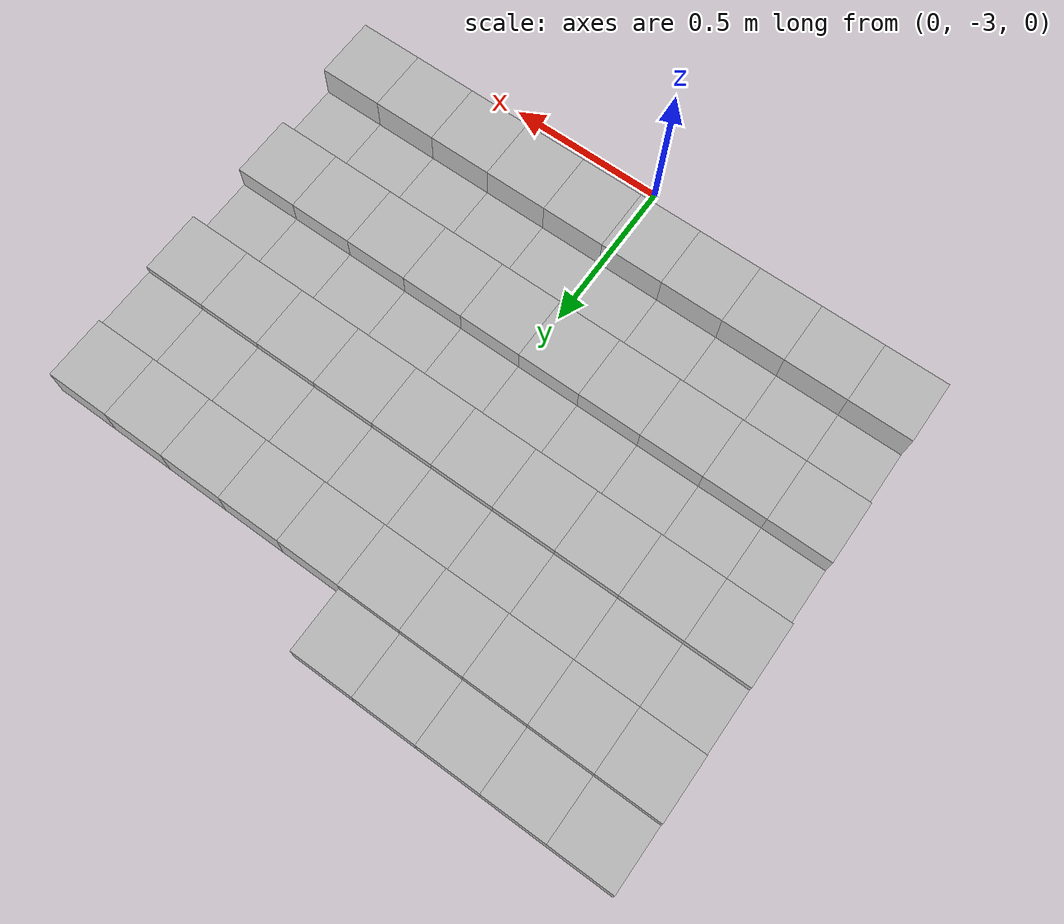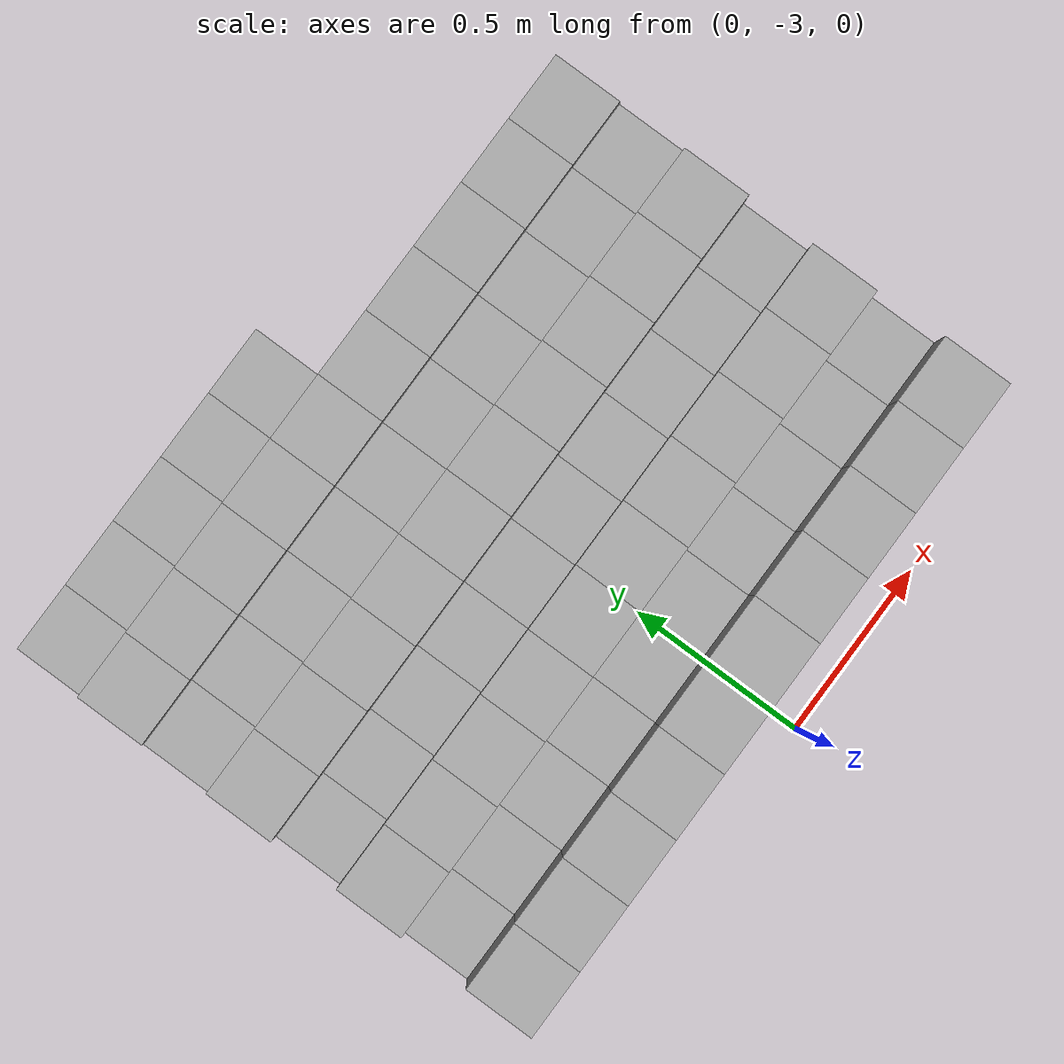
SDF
<sdf version="1.6">
 <model name="Terrain">
  <static>true</static>
  <link name="box_7_0">
   <pose>-0.9 -1.4 0.0395804026666 0 0 0</pose>
   <inertial>
    <mass>1.0</mass>
    <inertia><ixx>0.0</ixx><ixy>0.0</ixy><ixz>0.0</ixz><iyy>0.0</iyy><iyz>0.0</iyz><izz>0.0</izz></inertia>
   </inertial>
   <collision name="collision"><geometry><box><size>0.2 0.2 0.0791608053333</size></box></geometry></collision>
   <visual name="visual"><geometry><box><size>0.2 0.2 0.0791608053333</size></box></geometry></visual>
  </link>
  <link name="box_7_1">
   <pose>-0.7 -1.4 0.0395804026666 0 0 0</pose>
   <inertial>
    <mass>1.0</mass>
    <inertia><ixx>0.0</ixx><ixy>0.0</ixy><ixz>0.0</ixz><iyy>0.0</iyy><iyz>0.0</iyz><izz>0.0</izz></inertia>
   </inertial>
   <collision name="collision"><geometry><box><size>0.2 0.2 0.0791608053333</size></box></geometry></collision>
   <visual name="visual"><geometry><box><size>0.2 0.2 0.0791608053333</size></box></geometry></visual>
  </link>
  <link name="box_7_2">
   <pose>-0.5 -1.4 0.0395804026666 0 0 0</pose>
   <inertial>
    <mass>1.0</mass>
    <inertia><ixx>0.0</ixx><ixy>0.0</ixy><ixz>0.0</ixz><iyy>0.0</iyy><iyz>0.0</iyz><izz>0.0</izz></inertia>
   </inertial>
   <collision name="collision"><geometry><box><size>0.2 0.2 0.0791608053333</size></box></geometry></collision>
   <visual name="visual"><geometry><box><size>0.2 0.2 0.0791608053333</size></box></geometry></visual>
  </link>
  <link name="box_7_3">
   <pose>-0.3 -1.4 0.0395804026666 0 0 0</pose>
   <inertial>
    <mass>1.0</mass>
    <inertia><ixx>0.0</ixx><ixy>0.0</ixy><ixz>0.0</ixz><iyy>0.0</iyy><iyz>0.0</iyz><izz>0.0</izz></inertia>
   </inertial>
   <collision name="collision"><geometry><box><size>0.2 0.2 0.0791608053333</size></box></geometry></collision>
   <visual name="visual"><geometry><box><size>0.2 0.2 0.0791608053333</size></box></geometry></visual>
  </link>
  <link name="box_7_4">
   <pose>-0.1 -1.4 0.0395804026666 0 0 0</pose>
   <inertial>
    <mass>1.0</mass>
    <inertia><ixx>0.0</ixx><ixy>0.0</ixy><ixz>0.0</ixz><iyy>0.0</iyy><iyz>0.0</iyz><izz>0.0</izz></inertia>
   </inertial>
   <collision name="collision"><geometry><box><size>0.2 0.2 0.0791608053333</size></box></geometry></collision>
   <visual name="visual"><geometry><box><size>0.2 0.2 0.0791608053333</size></box></geometry></visual>
  </link>
  <link name="box_8_0">
   <pose>-0.9 -1.6 0.0584761401967 0 0 0</pose>
   <inertial>
    <mass>1.0</mass>
    <inertia><ixx>0.0</ixx><ixy>0.0</ixy><ixz>0.0</ixz><iyy>0.0</iyy><iyz>0.0</iyz><izz>0.0</izz></inertia>
   </inertial>
   <collision name="collision"><geometry><box><size>0.2 0.2 0.116952280393</size></box></geometry></collision>
   <visual name="visual"><geometry><box><size>0.2 0.2 0.116952280393</size></box></geometry></visual>
  </link>
  <link name="box_8_1">
   <pose>-0.7 -1.6 0.0584761401967 0 0 0</pose>
   <inertial>
    <mass>1.0</mass>
    <inertia><ixx>0.0</ixx><ixy>0.0</ixy><ixz>0.0</ixz><iyy>0.0</iyy><iyz>0.0</iyz><izz>0.0</izz></inertia>
   </inertial>
   <collision name="collision"><geometry><box><size>0.2 0.2 0.116952280393</size></box></geometry></collision>
   <visual name="visual"><geometry><box><size>0.2 0.2 0.116952280393</size></box></geometry></visual>
  </link>
  <link name="box_8_2">
   <pose>-0.5 -1.6 0.0584761401967 0 0 0</pose>
   <inertial>
    <mass>1.0</mass>
    <inertia><ixx>0.0</ixx><ixy>0.0</ixy><ixz>0.0</ixz><iyy>0.0</iyy><iyz>0.0</iyz><izz>0.0</izz></inertia>
   </inertial>
   <collision name="collision"><geometry><box><size>0.2 0.2 0.116952280393</size></box></geometry></collision>
   <visual name="visual"><geometry><box><size>0.2 0.2 0.116952280393</size></box></geometry></visual>
  </link>
  <link name="box_8_3">
   <pose>-0.3 -1.6 0.0584761401967 0 0 0</pose>
   <inertial>
    <mass>1.0</mass>
    <inertia><ixx>0.0</ixx><ixy>0.0</ixy><ixz>0.0</ixz><iyy>0.0</iyy><iyz>0.0</iyz><izz>0.0</izz></inertia>
   </inertial>
   <collision name="collision"><geometry><box><size>0.2 0.2 0.116952280393</size></box></geometry></collision>
   <visual name="visual"><geometry><box><size>0.2 0.2 0.116952280393</size></box></geometry></visual>
  </link>
  <link name="box_8_4">
   <pose>-0.1 -1.6 0.0584761401967 0 0 0</pose>
   <inertial>
    <mass>1.0</mass>
    <inertia><ixx>0.0</ixx><ixy>0.0</ixy><ixz>0.0</ixz><iyy>0.0</iyy><iyz>0.0</iyz><izz>0.0</izz></inertia>
   </inertial>
   <collision name="collision"><geometry><box><size>0.2 0.2 0.116952280393</size></box></geometry></collision>
   <visual name="visual"><geometry><box><size>0.2 0.2 0.116952280393</size></box></geometry></visual>
  </link>
  <link name="box_8_5">
   <pose>0.1 -1.6 0.0584761401967 0 0 0</pose>
   <inertial>
    <mass>1.0</mass>
    <inertia><ixx>0.0</ixx><ixy>0.0</ixy><ixz>0.0</ixz><iyy>0.0</iyy><iyz>0.0</iyz><izz>0.0</izz></inertia>
   </inertial>
   <collision name="collision"><geometry><box><size>0.2 0.2 0.116952280393</size></box></geometry></collision>
   <visual name="visual"><geometry><box><size>0.2 0.2 0.116952280393</size></box></geometry></visual>
  </link>
  <link name="box_8_6">
   <pose>0.3 -1.6 0.0584761401967 0 0 0</pose>
   <inertial>
    <mass>1.0</mass>
    <inertia><ixx>0.0</ixx><ixy>0.0</ixy><ixz>0.0</ixz><iyy>0.0</iyy><iyz>0.0</iyz><izz>0.0</izz></inertia>
   </inertial>
   <collision name="collision"><geometry><box><size>0.2 0.2 0.116952280393</size></box></geometry></collision>
   <visual name="visual"><geometry><box><size>0.2 0.2 0.116952280393</size></box></geometry></visual>
  </link>
  <link name="box_8_7">
   <pose>0.5 -1.6 0.0584761401967 0 0 0</pose>
   <inertial>
    <mass>1.0</mass>
    <inertia><ixx>0.0</ixx><ixy>0.0</ixy><ixz>0.0</ixz><iyy>0.0</iyy><iyz>0.0</iyz><izz>0.0</izz></inertia>
   </inertial>
   <collision name="collision"><geometry><box><size>0.2 0.2 0.116952280393</size></box></geometry></collision>
   <visual name="visual"><geometry><box><size>0.2 0.2 0.116952280393</size></box></geometry></visual>
  </link>
  <link name="box_8_8">
   <pose>0.7 -1.6 0.0584761401967 0 0 0</pose>
   <inertial>
    <mass>1.0</mass>
    <inertia><ixx>0.0</ixx><ixy>0.0</ixy><ixz>0.0</ixz><iyy>0.0</iyy><iyz>0.0</iyz><izz>0.0</izz></inertia>
   </inertial>
   <collision name="collision"><geometry><box><size>0.2 0.2 0.116952280393</size></box></geometry></collision>
   <visual name="visual"><geometry><box><size>0.2 0.2 0.116952280393</size></box></geometry></visual>
  </link>
  <link name="box_8_9">
   <pose>0.9 -1.6 0.0584761401967 0 0 0</pose>
   <inertial>
    <mass>1.0</mass>
    <inertia><ixx>0.0</ixx><ixy>0.0</ixy><ixz>0.0</ixz><iyy>0.0</iyy><iyz>0.0</iyz><izz>0.0</izz></inertia>
   </inertial>
   <collision name="collision"><geometry><box><size>0.2 0.2 0.116952280393</size></box></geometry></collision>
   <visual name="visual"><geometry><box><size>0.2 0.2 0.116952280393</size></box></geometry></visual>
  </link>
  <link name="box_9_0">
   <pose>-0.9 -1.8 0.0466013704256 0 0 0</pose>
   <inertial>
    <mass>1.0</mass>
    <inertia><ixx>0.0</ixx><ixy>0.0</ixy><ixz>0.0</ixz><iyy>0.0</iyy><iyz>0.0</iyz><izz>0.0</izz></inertia>
   </inertial>
   <collision name="collision"><geometry><box><size>0.2 0.2 0.0932027408513</size></box></geometry></collision>
   <visual name="visual"><geometry><box><size>0.2 0.2 0.0932027408513</size></box></geometry></visual>
  </link>
  <link name="box_9_1">
   <pose>-0.7 -1.8 0.0466013704256 0 0 0</pose>
   <inertial>
    <mass>1.0</mass>
    <inertia><ixx>0.0</ixx><ixy>0.0</ixy><ixz>0.0</ixz><iyy>0.0</iyy><iyz>0.0</iyz><izz>0.0</izz></inertia>
   </inertial>
   <collision name="collision"><geometry><box><size>0.2 0.2 0.0932027408513</size></box></geometry></collision>
   <visual name="visual"><geometry><box><size>0.2 0.2 0.0932027408513</size></box></geometry></visual>
  </link>
  <link name="box_9_2">
   <pose>-0.5 -1.8 0.0466013704256 0 0 0</pose>
   <inertial>
    <mass>1.0</mass>
    <inertia><ixx>0.0</ixx><ixy>0.0</ixy><ixz>0.0</ixz><iyy>0.0</iyy><iyz>0.0</iyz><izz>0.0</izz></inertia>
   </inertial>
   <collision name="collision"><geometry><box><size>0.2 0.2 0.0932027408513</size></box></geometry></collision>
   <visual name="visual"><geometry><box><size>0.2 0.2 0.0932027408513</size></box></geometry></visual>
  </link>
  <link name="box_9_3">
   <pose>-0.3 -1.8 0.0466013704256 0 0 0</pose>
   <inertial>
    <mass>1.0</mass>
    <inertia><ixx>0.0</ixx><ixy>0.0</ixy><ixz>0.0</ixz><iyy>0.0</iyy><iyz>0.0</iyz><izz>0.0</izz></inertia>
   </inertial>
   <collision name="collision"><geometry><box><size>0.2 0.2 0.0932027408513</size></box></geometry></collision>
   <visual name="visual"><geometry><box><size>0.2 0.2 0.0932027408513</size></box></geometry></visual>
  </link>
  <link name="box_9_4">
   <pose>-0.1 -1.8 0.0466013704256 0 0 0</pose>
   <inertial>
    <mass>1.0</mass>
    <inertia><ixx>0.0</ixx><ixy>0.0</ixy><ixz>0.0</ixz><iyy>0.0</iyy><iyz>0.0</iyz><izz>0.0</izz></inertia>
   </inertial>
   <collision name="collision"><geometry><box><size>0.2 0.2 0.0932027408513</size></box></geometry></collision>
   <visual name="visual"><geometry><box><size>0.2 0.2 0.0932027408513</size></box></geometry></visual>
  </link>
  <link name="box_9_5">
   <pose>0.1 -1.8 0.0466013704256 0 0 0</pose>
   <inertial>
    <mass>1.0</mass>
    <inertia><ixx>0.0</ixx><ixy>0.0</ixy><ixz>0.0</ixz><iyy>0.0</iyy><iyz>0.0</iyz><izz>0.0</izz></inertia>
   </inertial>
   <collision name="collision"><geometry><box><size>0.2 0.2 0.0932027408513</size></box></geometry></collision>
   <visual name="visual"><geometry><box><size>0.2 0.2 0.0932027408513</size></box></geometry></visual>
  </link>
  <link name="box_9_6">
   <pose>0.3 -1.8 0.0466013704256 0 0 0</pose>
   <inertial>
    <mass>1.0</mass>
    <inertia><ixx>0.0</ixx><ixy>0.0</ixy><ixz>0.0</ixz><iyy>0.0</iyy><iyz>0.0</iyz><izz>0.0</izz></inertia>
   </inertial>
   <collision name="collision"><geometry><box><size>0.2 0.2 0.0932027408513</size></box></geometry></collision>
   <visual name="visual"><geometry><box><size>0.2 0.2 0.0932027408513</size></box></geometry></visual>
  </link>
  <link name="box_9_7">
   <pose>0.5 -1.8 0.0466013704256 0 0 0</pose>
   <inertial>
    <mass>1.0</mass>
    <inertia><ixx>0.0</ixx><ixy>0.0</ixy><ixz>0.0</ixz><iyy>0.0</iyy><iyz>0.0</iyz><izz>0.0</izz></inertia>
   </inertial>
   <collision name="collision"><geometry><box><size>0.2 0.2 0.0932027408513</size></box></geometry></collision>
   <visual name="visual"><geometry><box><size>0.2 0.2 0.0932027408513</size></box></geometry></visual>
  </link>
  <link name="box_9_8">
   <pose>0.7 -1.8 0.0466013704256 0 0 0</pose>
   <inertial>
    <mass>1.0</mass>
    <inertia><ixx>0.0</ixx><ixy>0.0</ixy><ixz>0.0</ixz><iyy>0.0</iyy><iyz>0.0</iyz><izz>0.0</izz></inertia>
   </inertial>
   <collision name="collision"><geometry><box><size>0.2 0.2 0.0932027408513</size></box></geometry></collision>
   <visual name="visual"><geometry><box><size>0.2 0.2 0.0932027408513</size></box></geometry></visual>
  </link>
  <link name="box_9_9">
   <pose>0.9 -1.8 0.0466013704256 0 0 0</pose>
   <inertial>
    <mass>1.0</mass>
    <inertia><ixx>0.0</ixx><ixy>0.0</ixy><ixz>0.0</ixz><iyy>0.0</iyy><iyz>0.0</iyz><izz>0.0</izz></inertia>
   </inertial>
   <collision name="collision"><geometry><box><size>0.2 0.2 0.0932027408513</size></box></geometry></collision>
   <visual name="visual"><geometry><box><size>0.2 0.2 0.0932027408513</size></box></geometry></visual>
  </link>
  <link name="box_10_0">
   <pose>-0.9 -2.0 0.0619657868485 0 0 0</pose>
   <inertial>
    <mass>1.0</mass>
    <inertia><ixx>0.0</ixx><ixy>0.0</ixy><ixz>0.0</ixz><iyy>0.0</iyy><iyz>0.0</iyz><izz>0.0</izz></inertia>
   </inertial>
   <collision name="collision"><geometry><box><size>0.2 0.2 0.123931573697</size></box></geometry></collision>
   <visual name="visual"><geometry><box><size>0.2 0.2 0.123931573697</size></box></geometry></visual>
  </link>
  <link name="box_10_1">
   <pose>-0.7 -2.0 0.0619657868485 0 0 0</pose>
   <inertial>
    <mass>1.0</mass>
    <inertia><ixx>0.0</ixx><ixy>0.0</ixy><ixz>0.0</ixz><iyy>0.0</iyy><iyz>0.0</iyz><izz>0.0</izz></inertia>
   </inertial>
   <collision name="collision"><geometry><box><size>0.2 0.2 0.123931573697</size></box></geometry></collision>
   <visual name="visual"><geometry><box><size>0.2 0.2 0.123931573697</size></box></geometry></visual>
  </link>
  <link name="box_10_2">
   <pose>-0.5 -2.0 0.0619657868485 0 0 0</pose>
   <inertial>
    <mass>1.0</mass>
    <inertia><ixx>0.0</ixx><ixy>0.0</ixy><ixz>0.0</ixz><iyy>0.0</iyy><iyz>0.0</iyz><izz>0.0</izz></inertia>
   </inertial>
   <collision name="collision"><geometry><box><size>0.2 0.2 0.123931573697</size></box></geometry></collision>
   <visual name="visual"><geometry><box><size>0.2 0.2 0.123931573697</size></box></geometry></visual>
  </link>
  <link name="box_10_3">
   <pose>-0.3 -2.0 0.0619657868485 0 0 0</pose>
   <inertial>
    <mass>1.0</mass>
    <inertia><ixx>0.0</ixx><ixy>0.0</ixy><ixz>0.0</ixz><iyy>0.0</iyy><iyz>0.0</iyz><izz>0.0</izz></inertia>
   </inertial>
   <collision name="collision"><geometry><box><size>0.2 0.2 0.123931573697</size></box></geometry></collision>
   <visual name="visual"><geometry><box><size>0.2 0.2 0.123931573697</size></box></geometry></visual>
  </link>
  <link name="box_10_4">
   <pose>-0.1 -2.0 0.0619657868485 0 0 0</pose>
   <inertial>
    <mass>1.0</mass>
    <inertia><ixx>0.0</ixx><ixy>0.0</ixy><ixz>0.0</ixz><iyy>0.0</iyy><iyz>0.0</iyz><izz>0.0</izz></inertia>
   </inertial>
   <collision name="collision"><geometry><box><size>0.2 0.2 0.123931573697</size></box></geometry></collision>
   <visual name="visual"><geometry><box><size>0.2 0.2 0.123931573697</size></box></geometry></visual>
  </link>
  <link name="box_10_5">
   <pose>0.1 -2.0 0.0619657868485 0 0 0</pose>
   <inertial>
    <mass>1.0</mass>
    <inertia><ixx>0.0</ixx><ixy>0.0</ixy><ixz>0.0</ixz><iyy>0.0</iyy><iyz>0.0</iyz><izz>0.0</izz></inertia>
   </inertial>
   <collision name="collision"><geometry><box><size>0.2 0.2 0.123931573697</size></box></geometry></collision>
   <visual name="visual"><geometry><box><size>0.2 0.2 0.123931573697</size></box></geometry></visual>
  </link>
  <link name="box_10_6">
   <pose>0.3 -2.0 0.0619657868485 0 0 0</pose>
   <inertial>
    <mass>1.0</mass>
    <inertia><ixx>0.0</ixx><ixy>0.0</ixy><ixz>0.0</ixz><iyy>0.0</iyy><iyz>0.0</iyz><izz>0.0</izz></inertia>
   </inertial>
   <collision name="collision"><geometry><box><size>0.2 0.2 0.123931573697</size></box></geometry></collision>
   <visual name="visual"><geometry><box><size>0.2 0.2 0.123931573697</size></box></geometry></visual>
  </link>
  <link name="box_10_7">
   <pose>0.5 -2.0 0.0619657868485 0 0 0</pose>
   <inertial>
    <mass>1.0</mass>
    <inertia><ixx>0.0</ixx><ixy>0.0</ixy><ixz>0.0</ixz><iyy>0.0</iyy><iyz>0.0</iyz><izz>0.0</izz></inertia>
   </inertial>
   <collision name="collision"><geometry><box><size>0.2 0.2 0.123931573697</size></box></geometry></collision>
   <visual name="visual"><geometry><box><size>0.2 0.2 0.123931573697</size></box></geometry></visual>
  </link>
  <link name="box_10_8">
   <pose>0.7 -2.0 0.0619657868485 0 0 0</pose>
   <inertial>
    <mass>1.0</mass>
    <inertia><ixx>0.0</ixx><ixy>0.0</ixy><ixz>0.0</ixz><iyy>0.0</iyy><iyz>0.0</iyz><izz>0.0</izz></inertia>
   </inertial>
   <collision name="collision"><geometry><box><size>0.2 0.2 0.123931573697</size></box></geometry></collision>
   <visual name="visual"><geometry><box><size>0.2 0.2 0.123931573697</size></box></geometry></visual>
  </link>
  <link name="box_10_9">
   <pose>0.9 -2.0 0.0619657868485 0 0 0</pose>
   <inertial>
    <mass>1.0</mass>
    <inertia><ixx>0.0</ixx><ixy>0.0</ixy><ixz>0.0</ixz><iyy>0.0</iyy><iyz>0.0</iyz><izz>0.0</izz></inertia>
   </inertial>
   <collision name="collision"><geometry><box><size>0.2 0.2 0.123931573697</size></box></geometry></collision>
   <visual name="visual"><geometry><box><size>0.2 0.2 0.123931573697</size></box></geometry></visual>
  </link>
  <link name="box_11_0">
   <pose>-0.9 -2.2 0.0144472041441 0 0 0</pose>
   <inertial>
    <mass>1.0</mass>
    <inertia><ixx>0.0</ixx><ixy>0.0</ixy><ixz>0.0</ixz><iyy>0.0</iyy><iyz>0.0</iyz><izz>0.0</izz></inertia>
   </inertial>
   <collision name="collision"><geometry><box><size>0.2 0.2 0.0288944082882</size></box></geometry></collision>
   <visual name="visual"><geometry><box><size>0.2 0.2 0.0288944082882</size></box></geometry></visual>
  </link>
  <link name="box_11_1">
   <pose>-0.7 -2.2 0.0144472041441 0 0 0</pose>
   <inertial>
    <mass>1.0</mass>
    <inertia><ixx>0.0</ixx><ixy>0.0</ixy><ixz>0.0</ixz><iyy>0.0</iyy><iyz>0.0</iyz><izz>0.0</izz></inertia>
   </inertial>
   <collision name="collision"><geometry><box><size>0.2 0.2 0.0288944082882</size></box></geometry></collision>
   <visual name="visual"><geometry><box><size>0.2 0.2 0.0288944082882</size></box></geometry></visual>
  </link>
  <link name="box_11_2">
   <pose>-0.5 -2.2 0.0144472041441 0 0 0</pose>
   <inertial>
    <mass>1.0</mass>
    <inertia><ixx>0.0</ixx><ixy>0.0</ixy><ixz>0.0</ixz><iyy>0.0</iyy><iyz>0.0</iyz><izz>0.0</izz></inertia>
   </inertial>
   <collision name="collision"><geometry><box><size>0.2 0.2 0.0288944082882</size></box></geometry></collision>
   <visual name="visual"><geometry><box><size>0.2 0.2 0.0288944082882</size></box></geometry></visual>
  </link>
  <link name="box_11_3">
   <pose>-0.3 -2.2 0.0144472041441 0 0 0</pose>
   <inertial>
    <mass>1.0</mass>
    <inertia><ixx>0.0</ixx><ixy>0.0</ixy><ixz>0.0</ixz><iyy>0.0</iyy><iyz>0.0</iyz><izz>0.0</izz></inertia>
   </inertial>
   <collision name="collision"><geometry><box><size>0.2 0.2 0.0288944082882</size></box></geometry></collision>
   <visual name="visual"><geometry><box><size>0.2 0.2 0.0288944082882</size></box></geometry></visual>
  </link>
  <link name="box_11_4">
   <pose>-0.1 -2.2 0.0144472041441 0 0 0</pose>
   <inertial>
    <mass>1.0</mass>
    <inertia><ixx>0.0</ixx><ixy>0.0</ixy><ixz>0.0</ixz><iyy>0.0</iyy><iyz>0.0</iyz><izz>0.0</izz></inertia>
   </inertial>
   <collision name="collision"><geometry><box><size>0.2 0.2 0.0288944082882</size></box></geometry></collision>
   <visual name="visual"><geometry><box><size>0.2 0.2 0.0288944082882</size></box></geometry></visual>
  </link>
  <link name="box_11_5">
   <pose>0.1 -2.2 0.0144472041441 0 0 0</pose>
   <inertial>
    <mass>1.0</mass>
    <inertia><ixx>0.0</ixx><ixy>0.0</ixy><ixz>0.0</ixz><iyy>0.0</iyy><iyz>0.0</iyz><izz>0.0</izz></inertia>
   </inertial>
   <collision name="collision"><geometry><box><size>0.2 0.2 0.0288944082882</size></box></geometry></collision>
   <visual name="visual"><geometry><box><size>0.2 0.2 0.0288944082882</size></box></geometry></visual>
  </link>
  <link name="box_11_6">
   <pose>0.3 -2.2 0.0144472041441 0 0 0</pose>
   <inertial>
    <mass>1.0</mass>
    <inertia><ixx>0.0</ixx><ixy>0.0</ixy><ixz>0.0</ixz><iyy>0.0</iyy><iyz>0.0</iyz><izz>0.0</izz></inertia>
   </inertial>
   <collision name="collision"><geometry><box><size>0.2 0.2 0.0288944082882</size></box></geometry></collision>
   <visual name="visual"><geometry><box><size>0.2 0.2 0.0288944082882</size></box></geometry></visual>
  </link>
  <link name="box_11_7">
   <pose>0.5 -2.2 0.0144472041441 0 0 0</pose>
   <inertial>
    <mass>1.0</mass>
    <inertia><ixx>0.0</ixx><ixy>0.0</ixy><ixz>0.0</ixz><iyy>0.0</iyy><iyz>0.0</iyz><izz>0.0</izz></inertia>
   </inertial>
   <collision name="collision"><geometry><box><size>0.2 0.2 0.0288944082882</size></box></geometry></collision>
   <visual name="visual"><geometry><box><size>0.2 0.2 0.0288944082882</size></box></geometry></visual>
  </link>
  <link name="box_11_8">
   <pose>0.7 -2.2 0.0144472041441 0 0 0</pose>
   <inertial>
    <mass>1.0</mass>
    <inertia><ixx>0.0</ixx><ixy>0.0</ixy><ixz>0.0</ixz><iyy>0.0</iyy><iyz>0.0</iyz><izz>0.0</izz></inertia>
   </inertial>
   <collision name="collision"><geometry><box><size>0.2 0.2 0.0288944082882</size></box></geometry></collision>
   <visual name="visual"><geometry><box><size>0.2 0.2 0.0288944082882</size></box></geometry></visual>
  </link>
  <link name="box_11_9">
   <pose>0.9 -2.2 0.0144472041441 0 0 0</pose>
   <inertial>
    <mass>1.0</mass>
    <inertia><ixx>0.0</ixx><ixy>0.0</ixy><ixz>0.0</ixz><iyy>0.0</iyy><iyz>0.0</iyz><izz>0.0</izz></inertia>
   </inertial>
   <collision name="collision"><geometry><box><size>0.2 0.2 0.0288944082882</size></box></geometry></collision>
   <visual name="visual"><geometry><box><size>0.2 0.2 0.0288944082882</size></box></geometry></visual>
  </link>
  <link name="box_12_0">
   <pose>-0.9 -2.4 0.0558436131681 0 0 0</pose>
   <inertial>
    <mass>1.0</mass>
    <inertia><ixx>0.0</ixx><ixy>0.0</ixy><ixz>0.0</ixz><iyy>0.0</iyy><iyz>0.0</iyz><izz>0.0</izz></inertia>
   </inertial>
   <collision name="collision"><geometry><box><size>0.2 0.2 0.111687226336</size></box></geometry></collision>
   <visual name="visual"><geometry><box><size>0.2 0.2 0.111687226336</size></box></geometry></visual>
  </link>
  <link name="box_12_1">
   <pose>-0.7 -2.4 0.0558436131681 0 0 0</pose>
   <inertial>
    <mass>1.0</mass>
    <inertia><ixx>0.0</ixx><ixy>0.0</ixy><ixz>0.0</ixz><iyy>0.0</iyy><iyz>0.0</iyz><izz>0.0</izz></inertia>
   </inertial>
   <collision name="collision"><geometry><box><size>0.2 0.2 0.111687226336</size></box></geometry></collision>
   <visual name="visual"><geometry><box><size>0.2 0.2 0.111687226336</size></box></geometry></visual>
  </link>
  <link name="box_12_2">
   <pose>-0.5 -2.4 0.0558436131681 0 0 0</pose>
   <inertial>
    <mass>1.0</mass>
    <inertia><ixx>0.0</ixx><ixy>0.0</ixy><ixz>0.0</ixz><iyy>0.0</iyy><iyz>0.0</iyz><izz>0.0</izz></inertia>
   </inertial>
   <collision name="collision"><geometry><box><size>0.2 0.2 0.111687226336</size></box></geometry></collision>
   <visual name="visual"><geometry><box><size>0.2 0.2 0.111687226336</size></box></geometry></visual>
  </link>
  <link name="box_12_3">
   <pose>-0.3 -2.4 0.0558436131681 0 0 0</pose>
   <inertial>
    <mass>1.0</mass>
    <inertia><ixx>0.0</ixx><ixy>0.0</ixy><ixz>0.0</ixz><iyy>0.0</iyy><iyz>0.0</iyz><izz>0.0</izz></inertia>
   </inertial>
   <collision name="collision"><geometry><box><size>0.2 0.2 0.111687226336</size></box></geometry></collision>
   <visual name="visual"><geometry><box><size>0.2 0.2 0.111687226336</size></box></geometry></visual>
  </link>
  <link name="box_12_4">
   <pose>-0.1 -2.4 0.0558436131681 0 0 0</pose>
   <inertial>
    <mass>1.0</mass>
    <inertia><ixx>0.0</ixx><ixy>0.0</ixy><ixz>0.0</ixz><iyy>0.0</iyy><iyz>0.0</iyz><izz>0.0</izz></inertia>
   </inertial>
   <collision name="collision"><geometry><box><size>0.2 0.2 0.111687226336</size></box></geometry></collision>
   <visual name="visual"><geometry><box><size>0.2 0.2 0.111687226336</size></box></geometry></visual>
  </link>
  <link name="box_12_5">
   <pose>0.1 -2.4 0.0558436131681 0 0 0</pose>
   <inertial>
    <mass>1.0</mass>
    <inertia><ixx>0.0</ixx><ixy>0.0</ixy><ixz>0.0</ixz><iyy>0.0</iyy><iyz>0.0</iyz><izz>0.0</izz></inertia>
   </inertial>
   <collision name="collision"><geometry><box><size>0.2 0.2 0.111687226336</size></box></geometry></collision>
   <visual name="visual"><geometry><box><size>0.2 0.2 0.111687226336</size></box></geometry></visual>
  </link>
  <link name="box_12_6">
   <pose>0.3 -2.4 0.0558436131681 0 0 0</pose>
   <inertial>
    <mass>1.0</mass>
    <inertia><ixx>0.0</ixx><ixy>0.0</ixy><ixz>0.0</ixz><iyy>0.0</iyy><iyz>0.0</iyz><izz>0.0</izz></inertia>
   </inertial>
   <collision name="collision"><geometry><box><size>0.2 0.2 0.111687226336</size></box></geometry></collision>
   <visual name="visual"><geometry><box><size>0.2 0.2 0.111687226336</size></box></geometry></visual>
  </link>
  <link name="box_12_7">
   <pose>0.5 -2.4 0.0558436131681 0 0 0</pose>
   <inertial>
    <mass>1.0</mass>
    <inertia><ixx>0.0</ixx><ixy>0.0</ixy><ixz>0.0</ixz><iyy>0.0</iyy><iyz>0.0</iyz><izz>0.0</izz></inertia>
   </inertial>
   <collision name="collision"><geometry><box><size>0.2 0.2 0.111687226336</size></box></geometry></collision>
   <visual name="visual"><geometry><box><size>0.2 0.2 0.111687226336</size></box></geometry></visual>
  </link>
  <link name="box_12_8">
   <pose>0.7 -2.4 0.0558436131681 0 0 0</pose>
   <inertial>
    <mass>1.0</mass>
    <inertia><ixx>0.0</ixx><ixy>0.0</ixy><ixz>0.0</ixz><iyy>0.0</iyy><iyz>0.0</iyz><izz>0.0</izz></inertia>
   </inertial>
   <collision name="collision"><geometry><box><size>0.2 0.2 0.111687226336</size></box></geometry></collision>
   <visual name="visual"><geometry><box><size>0.2 0.2 0.111687226336</size></box></geometry></visual>
  </link>
  <link name="box_12_9">
   <pose>0.9 -2.4 0.0558436131681 0 0 0</pose>
   <inertial>
    <mass>1.0</mass>
    <inertia><ixx>0.0</ixx><ixy>0.0</ixy><ixz>0.0</ixz><iyy>0.0</iyy><iyz>0.0</iyz><izz>0.0</izz></inertia>
   </inertial>
   <collision name="collision"><geometry><box><size>0.2 0.2 0.111687226336</size></box></geometry></collision>
   <visual name="visual"><geometry><box><size>0.2 0.2 0.111687226336</size></box></geometry></visual>
  </link>
  <link name="box_13_0">
   <pose>-0.9 -2.6 0.0155727549804 0 0 0</pose>
   <inertial>
    <mass>1.0</mass>
    <inertia><ixx>0.0</ixx><ixy>0.0</ixy><ixz>0.0</ixz><iyy>0.0</iyy><iyz>0.0</iyz><izz>0.0</izz></inertia>
   </inertial>
   <collision name="collision"><geometry><box><size>0.2 0.2 0.0311455099607</size></box></geometry></collision>
   <visual name="visual"><geometry><box><size>0.2 0.2 0.0311455099607</size></box></geometry></visual>
  </link>
  <link name="box_13_1">
   <pose>-0.7 -2.6 0.0155727549804 0 0 0</pose>
   <inertial>
    <mass>1.0</mass>
    <inertia><ixx>0.0</ixx><ixy>0.0</ixy><ixz>0.0</ixz><iyy>0.0</iyy><iyz>0.0</iyz><izz>0.0</izz></inertia>
   </inertial>
   <collision name="collision"><geometry><box><size>0.2 0.2 0.0311455099607</size></box></geometry></collision>
   <visual name="visual"><geometry><box><size>0.2 0.2 0.0311455099607</size></box></geometry></visual>
  </link>
  <link name="box_13_2">
   <pose>-0.5 -2.6 0.0155727549804 0 0 0</pose>
   <inertial>
    <mass>1.0</mass>
    <inertia><ixx>0.0</ixx><ixy>0.0</ixy><ixz>0.0</ixz><iyy>0.0</iyy><iyz>0.0</iyz><izz>0.0</izz></inertia>
   </inertial>
   <collision name="collision"><geometry><box><size>0.2 0.2 0.0311455099607</size></box></geometry></collision>
   <visual name="visual"><geometry><box><size>0.2 0.2 0.0311455099607</size></box></geometry></visual>
  </link>
  <link name="box_13_3">
   <pose>-0.3 -2.6 0.0155727549804 0 0 0</pose>
   <inertial>
    <mass>1.0</mass>
    <inertia><ixx>0.0</ixx><ixy>0.0</ixy><ixz>0.0</ixz><iyy>0.0</iyy><iyz>0.0</iyz><izz>0.0</izz></inertia>
   </inertial>
   <collision name="collision"><geometry><box><size>0.2 0.2 0.0311455099607</size></box></geometry></collision>
   <visual name="visual"><geometry><box><size>0.2 0.2 0.0311455099607</size></box></geometry></visual>
  </link>
  <link name="box_13_4">
   <pose>-0.1 -2.6 0.0155727549804 0 0 0</pose>
   <inertial>
    <mass>1.0</mass>
    <inertia><ixx>0.0</ixx><ixy>0.0</ixy><ixz>0.0</ixz><iyy>0.0</iyy><iyz>0.0</iyz><izz>0.0</izz></inertia>
   </inertial>
   <collision name="collision"><geometry><box><size>0.2 0.2 0.0311455099607</size></box></geometry></collision>
   <visual name="visual"><geometry><box><size>0.2 0.2 0.0311455099607</size></box></geometry></visual>
  </link>
  <link name="box_13_5">
   <pose>0.1 -2.6 0.0155727549804 0 0 0</pose>
   <inertial>
    <mass>1.0</mass>
    <inertia><ixx>0.0</ixx><ixy>0.0</ixy><ixz>0.0</ixz><iyy>0.0</iyy><iyz>0.0</iyz><izz>0.0</izz></inertia>
   </inertial>
   <collision name="collision"><geometry><box><size>0.2 0.2 0.0311455099607</size></box></geometry></collision>
   <visual name="visual"><geometry><box><size>0.2 0.2 0.0311455099607</size></box></geometry></visual>
  </link>
  <link name="box_13_6">
   <pose>0.3 -2.6 0.0155727549804 0 0 0</pose>
   <inertial>
    <mass>1.0</mass>
    <inertia><ixx>0.0</ixx><ixy>0.0</ixy><ixz>0.0</ixz><iyy>0.0</iyy><iyz>0.0</iyz><izz>0.0</izz></inertia>
   </inertial>
   <collision name="collision"><geometry><box><size>0.2 0.2 0.0311455099607</size></box></geometry></collision>
   <visual name="visual"><geometry><box><size>0.2 0.2 0.0311455099607</size></box></geometry></visual>
  </link>
  <link name="box_13_7">
   <pose>0.5 -2.6 0.0155727549804 0 0 0</pose>
   <inertial>
    <mass>1.0</mass>
    <inertia><ixx>0.0</ixx><ixy>0.0</ixy><ixz>0.0</ixz><iyy>0.0</iyy><iyz>0.0</iyz><izz>0.0</izz></inertia>
   </inertial>
   <collision name="collision"><geometry><box><size>0.2 0.2 0.0311455099607</size></box></geometry></collision>
   <visual name="visual"><geometry><box><size>0.2 0.2 0.0311455099607</size></box></geometry></visual>
  </link>
  <link name="box_13_8">
   <pose>0.7 -2.6 0.0155727549804 0 0 0</pose>
   <inertial>
    <mass>1.0</mass>
    <inertia><ixx>0.0</ixx><ixy>0.0</ixy><ixz>0.0</ixz><iyy>0.0</iyy><iyz>0.0</iyz><izz>0.0</izz></inertia>
   </inertial>
   <collision name="collision"><geometry><box><size>0.2 0.2 0.0311455099607</size></box></geometry></collision>
   <visual name="visual"><geometry><box><size>0.2 0.2 0.0311455099607</size></box></geometry></visual>
  </link>
  <link name="box_13_9">
   <pose>0.9 -2.6 0.0155727549804 0 0 0</pose>
   <inertial>
    <mass>1.0</mass>
    <inertia><ixx>0.0</ixx><ixy>0.0</ixy><ixz>0.0</ixz><iyy>0.0</iyy><iyz>0.0</iyz><izz>0.0</izz></inertia>
   </inertial>
   <collision name="collision"><geometry><box><size>0.2 0.2 0.0311455099607</size></box></geometry></collision>
   <visual name="visual"><geometry><box><size>0.2 0.2 0.0311455099607</size></box></geometry></visual>
  </link>
  <link name="box_14_0">
   <pose>-0.9 -2.8 0.0714182714021 0 0 0</pose>
   <inertial>
    <mass>1.0</mass>
    <inertia><ixx>0.0</ixx><ixy>0.0</ixy><ixz>0.0</ixz><iyy>0.0</iyy><iyz>0.0</iyz><izz>0.0</izz></inertia>
   </inertial>
   <collision name="collision"><geometry><box><size>0.2 0.2 0.142836542804</size></box></geometry></collision>
   <visual name="visual"><geometry><box><size>0.2 0.2 0.142836542804</size></box></geometry></visual>
  </link>
  <link name="box_14_1">
   <pose>-0.7 -2.8 0.0714182714021 0 0 0</pose>
   <inertial>
    <mass>1.0</mass>
    <inertia><ixx>0.0</ixx><ixy>0.0</ixy><ixz>0.0</ixz><iyy>0.0</iyy><iyz>0.0</iyz><izz>0.0</izz></inertia>
   </inertial>
   <collision name="collision"><geometry><box><size>0.2 0.2 0.142836542804</size></box></geometry></collision>
   <visual name="visual"><geometry><box><size>0.2 0.2 0.142836542804</size></box></geometry></visual>
  </link>
  <link name="box_14_2">
   <pose>-0.5 -2.8 0.0714182714021 0 0 0</pose>
   <inertial>
    <mass>1.0</mass>
    <inertia><ixx>0.0</ixx><ixy>0.0</ixy><ixz>0.0</ixz><iyy>0.0</iyy><iyz>0.0</iyz><izz>0.0</izz></inertia>
   </inertial>
   <collision name="collision"><geometry><box><size>0.2 0.2 0.142836542804</size></box></geometry></collision>
   <visual name="visual"><geometry><box><size>0.2 0.2 0.142836542804</size></box></geometry></visual>
  </link>
  <link name="box_14_3">
   <pose>-0.3 -2.8 0.0714182714021 0 0 0</pose>
   <inertial>
    <mass>1.0</mass>
    <inertia><ixx>0.0</ixx><ixy>0.0</ixy><ixz>0.0</ixz><iyy>0.0</iyy><iyz>0.0</iyz><izz>0.0</izz></inertia>
   </inertial>
   <collision name="collision"><geometry><box><size>0.2 0.2 0.142836542804</size></box></geometry></collision>
   <visual name="visual"><geometry><box><size>0.2 0.2 0.142836542804</size></box></geometry></visual>
  </link>
  <link name="box_14_4">
   <pose>-0.1 -2.8 0.0714182714021 0 0 0</pose>
   <inertial>
    <mass>1.0</mass>
    <inertia><ixx>0.0</ixx><ixy>0.0</ixy><ixz>0.0</ixz><iyy>0.0</iyy><iyz>0.0</iyz><izz>0.0</izz></inertia>
   </inertial>
   <collision name="collision"><geometry><box><size>0.2 0.2 0.142836542804</size></box></geometry></collision>
   <visual name="visual"><geometry><box><size>0.2 0.2 0.142836542804</size></box></geometry></visual>
  </link>
  <link name="box_14_5">
   <pose>0.1 -2.8 0.0714182714021 0 0 0</pose>
   <inertial>
    <mass>1.0</mass>
    <inertia><ixx>0.0</ixx><ixy>0.0</ixy><ixz>0.0</ixz><iyy>0.0</iyy><iyz>0.0</iyz><izz>0.0</izz></inertia>
   </inertial>
   <collision name="collision"><geometry><box><size>0.2 0.2 0.142836542804</size></box></geometry></collision>
   <visual name="visual"><geometry><box><size>0.2 0.2 0.142836542804</size></box></geometry></visual>
  </link>
  <link name="box_14_6">
   <pose>0.3 -2.8 0.0714182714021 0 0 0</pose>
   <inertial>
    <mass>1.0</mass>
    <inertia><ixx>0.0</ixx><ixy>0.0</ixy><ixz>0.0</ixz><iyy>0.0</iyy><iyz>0.0</iyz><izz>0.0</izz></inertia>
   </inertial>
   <collision name="collision"><geometry><box><size>0.2 0.2 0.142836542804</size></box></geometry></collision>
   <visual name="visual"><geometry><box><size>0.2 0.2 0.142836542804</size></box></geometry></visual>
  </link>
  <link name="box_14_7">
   <pose>0.5 -2.8 0.0714182714021 0 0 0</pose>
   <inertial>
    <mass>1.0</mass>
    <inertia><ixx>0.0</ixx><ixy>0.0</ixy><ixz>0.0</ixz><iyy>0.0</iyy><iyz>0.0</iyz><izz>0.0</izz></inertia>
   </inertial>
   <collision name="collision"><geometry><box><size>0.2 0.2 0.142836542804</size></box></geometry></collision>
   <visual name="visual"><geometry><box><size>0.2 0.2 0.142836542804</size></box></geometry></visual>
  </link>
  <link name="box_14_8">
   <pose>0.7 -2.8 0.0714182714021 0 0 0</pose>
   <inertial>
    <mass>1.0</mass>
    <inertia><ixx>0.0</ixx><ixy>0.0</ixy><ixz>0.0</ixz><iyy>0.0</iyy><iyz>0.0</iyz><izz>0.0</izz></inertia>
   </inertial>
   <collision name="collision"><geometry><box><size>0.2 0.2 0.142836542804</size></box></geometry></collision>
   <visual name="visual"><geometry><box><size>0.2 0.2 0.142836542804</size></box></geometry></visual>
  </link>
  <link name="box_14_9">
   <pose>0.9 -2.8 0.0714182714021 0 0 0</pose>
   <inertial>
    <mass>1.0</mass>
    <inertia><ixx>0.0</ixx><ixy>0.0</ixy><ixz>0.0</ixz><iyy>0.0</iyy><iyz>0.0</iyz><izz>0.0</izz></inertia>
   </inertial>
   <collision name="collision"><geometry><box><size>0.2 0.2 0.142836542804</size></box></geometry></collision>
   <visual name="visual"><geometry><box><size>0.2 0.2 0.142836542804</size></box></geometry></visual>
  </link>
 </model>
</sdf>
